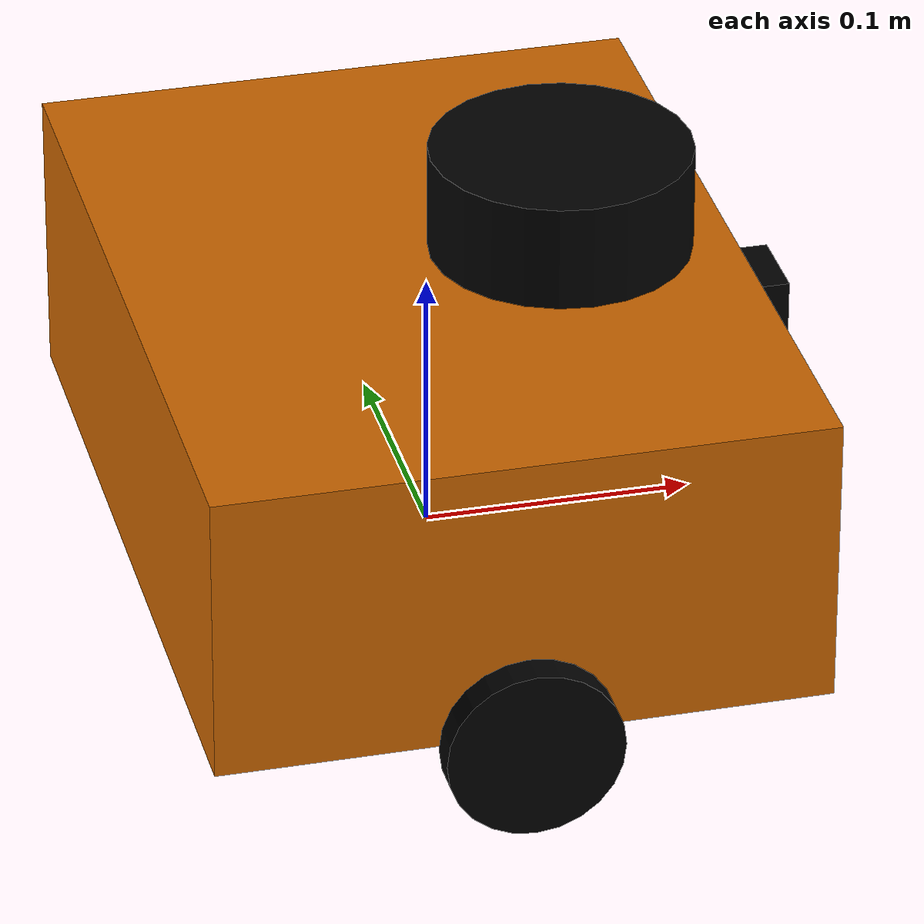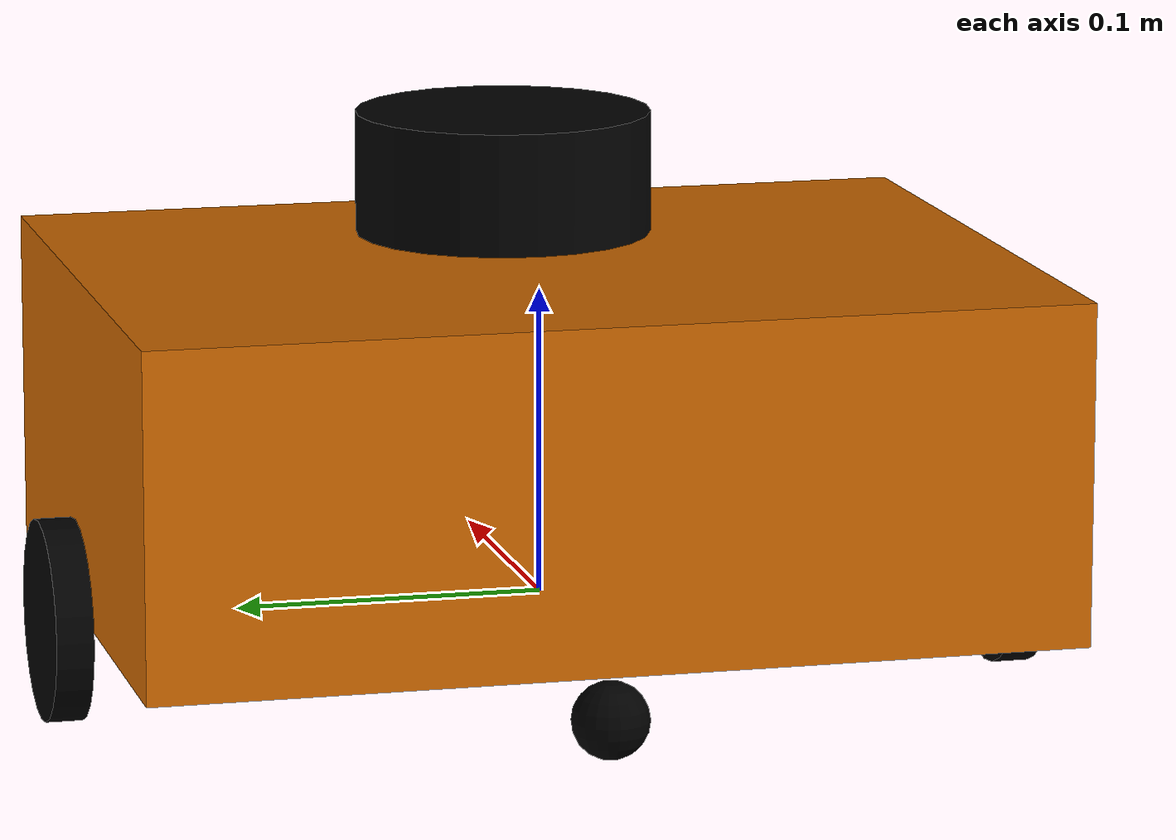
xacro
<?xml version="1.0"?>
<robot xmlns:xacro="http://www.ros.org/wiki/xacro" name="diff_bot">
  <!-- Include other XACRO files -->
  <xacro:include filename="properties.xacro"/>
  <xacro:include filename="inertial_macros.xacro"/>
  <xacro:include filename="chassis.xacro"/>
  <xacro:include filename="wheels.xacro"/>
  <xacro:include filename="caster_wheel.xacro"/>
  <xacro:include filename="lidar.xacro"/>
  <xacro:include filename="camera.xacro"/>
  <xacro:include filename="gazebo_control.xacro"/>
  <xacro:include filename="control.xacro"/>

  <!-- Base link - the root of the robot -->
  <link name="base_link"/>
</robot>

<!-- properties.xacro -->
<robot xmlns:xacro="http://www.ros.org/wiki/xacro">

  <!-- ################### Chassis ################### -->
  <xacro:property name="chassis_length" value="0.225"/> <!-- Updated from previous box dimensions -->
  <xacro:property name="chassis_width" value="0.3"/> <!-- Updated from previous box dimensions -->
  <xacro:property name="chassis_height" value="0.11"/> <!-- Retained as it matches the original -->
  <xacro:property name="chassis_mass" value="3.0"/> <!-- Mass remains unchanged -->

  <!-- ################### Wheels ################### -->
  <xacro:property name="wheel_offset_x" value="0"/> <!-- No forward/backward offset specified -->
  <xacro:property name="wheel_offset_y" value="0.158"/> <!-- Updated from wheel joint positions -->
  <xacro:property name="wheel_offset_z" value="0"/> <!-- Aligned with base_link -->
  <xacro:property name="wheel_thickness" value="0.012"/> <!-- Matches cylinder length for wheels -->
  <xacro:property name="wheel_radius" value="0.0325"/> <!-- Matches cylinder radius for wheels -->
  <xacro:property name="wheel_mass" value="0.037"/> <!-- Mass remains unchanged -->

  <!-- ################### Caster Wheel ################### -->
  <xacro:property name="caster_wheel_radius" value="0.0125"/> <!-- Updated to match sphere radius -->
  <xacro:property name="caster_wheel_mass" value="0.01"/> <!-- Mass remains unchanged -->
  <xacro:property name="caster_wheel_offset_x" value="0.0925"/> <!-- Matches caster joint offset -->
  <xacro:property name="caster_wheel_offset_z" value="-0.019"/> <!-- Matches caster joint offset -->

  <!-- ################### LIDAR ################### -->
  <xacro:property name="lidar_radius" value="0.0485"/> <!-- Diameter=97mm -->
  <xacro:property name="lidar_height" value="0.06"/> <!-- Height=60mm -->
  <xacro:property name="lidar_offset_x" value="0.05"/> <!-- X offset from base -->
  <xacro:property name="lidar_offset_y" value="0.0"/> <!-- Y offset from base -->
  <xacro:property name="lidar_offset_z" value="0.12"/> <!-- Z offset from base -->

    <!-- ################### Camera ################### -->
  <xacro:property name="camera_width" value="0.03"/> <!-- Camera width -->
  <xacro:property name="camera_height" value="0.02"/> <!-- Camera height -->
  <xacro:property name="camera_depth" value="0.03"/> <!-- Camera depth -->
  <xacro:property name="camera_offset_x" value="0.118"/> <!-- X offset from base -->
  <xacro:property name="camera_offset_y" value="0.0"/> <!-- Y offset from base -->
  <xacro:property name="camera_offset_z" value="0.08"/> <!-- Z offset from base -->

                                <!-- Colors -->
    <material name="white">
        <color rgba="1 1 1 1"/>
    </material>

    <material name="red">
        <color rgba="1 0 0 1"/>
    </material>

    <material name="green">
        <color rgba="0 1 0 1"/>
    </material>

    <material name="blue">
        <color rgba="0 0 1 1"/>
    </material>

    <material name="black">
        <color rgba="0 0 0 1"/>
    </material>

    <material name="orange">
        <color rgba="0.8 0.4 0.0 1.0"/> <!-- Orange -->
    </material>
</robot>

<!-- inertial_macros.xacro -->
<robot xmlns:xacro="http://www.ros.org/wiki/xacro" >
<!-- Specify some standard inertial calculations https://en.wikipedia.org/wiki/List_of_moments_of_inertia -->
<!-- These make use of xacro's mathematical functionality -->
<xacro:macro name="inertial_sphere" params="mass radius *origin">
  <inertial>
    <xacro:insert_block name="origin"/>
    <mass value="${mass}" />
    <inertia ixx="${(2/5) * mass * (radius*radius)}" ixy="0.0" ixz="0.0"
             iyy="${(2/5) * mass * (radius*radius)}" iyz="0.0"
             izz="${(2/5) * mass * (radius*radius)}" />
  </inertial>
</xacro:macro>

<xacro:macro name="inertial_box" params="mass x y z *origin">
  <inertial>
    <xacro:insert_block name="origin"/>
    <mass value="${mass}" />
    <inertia ixx="${(1/12) * mass * (y*y+z*z)}" ixy="0.0" ixz="0.0"
             iyy="${(1/12) * mass * (x*x+z*z)}" iyz="0.0"
             izz="${(1/12) * mass * (x*x+y*y)}" />
  </inertial>
</xacro:macro>

<xacro:macro name="inertial_cylinder" params="mass length radius *origin">
  <inertial>
    <xacro:insert_block name="origin"/>
    <mass value="${mass}" />
    <inertia ixx="${(1/12) * mass * (3*radius*radius + length*length)}" ixy="0.0" ixz="0.0"
             iyy="${(1/12) * mass * (3*radius*radius + length*length)}" iyz="0.0"
             izz="${(1/2) * mass * (radius*radius)}" />
  </inertial>
</xacro:macro>
</robot>

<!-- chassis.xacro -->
<robot xmlns:xacro="http://www.ros.org/wiki/xacro">
<!-- Define materials -->

<!-- ################### BASE CHASSIS ################### -->
<link name="chassis_link">
  <visual>
    <geometry>
      <box size="0.225 0.3 0.11"/> <!-- L=22.5cm, W=30cm, H=11cm -->
    </geometry>
    <origin xyz="0.0 0.0 0.055" rpy="0.0 0.0 0.0"/>
    <material name="orange"/>
  </visual>
  <collision>
    <geometry>
      <box size="0.225 0.3 0.11"/> <!-- L=22.5cm, W=30cm, H=11cm -->
    </geometry>
    <origin xyz="0.0 0.0 0.055" rpy="0.0 0.0 0.0"/>
  </collision>
  <xacro:inertial_box mass="3" x="0.225" y="0.3" z="0.11">
    <origin xyz="0.0 0.0 0.055" rpy="0.0 0.0 0.0"/>
  </xacro:inertial_box>
</link>

<joint name="chassis_joint" type="fixed">
  <parent link="base_link"/>
  <child link="chassis_link"/>
  <origin xyz="0.0 0.0 0.0" rpy="0.0 0.0 0.0"/>
</joint>
<gazebo reference="chassis_link">
    <material> Gazebo/Orange </material>
</gazebo>

</robot>

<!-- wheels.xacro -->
<robot xmlns:xacro="http://www.ros.org/wiki/xacro">
<!-- ################### LEFT WHEEL ################### -->
<link name="wheel_left">
  <visual>
    <geometry>
      <cylinder radius="${wheel_radius}" length="${wheel_thickness}"/>
    </geometry>
    <material name="black"/>
  </visual>
  <collision>
    <geometry>
      <cylinder radius="${wheel_radius}" length="${wheel_thickness}"/>
    </geometry>
  </collision>
  <xacro:inertial_cylinder mass="${wheel_mass}" length="${wheel_thickness}" radius="${wheel_radius}">
    <origin xyz="0 0 0" rpy="0 0 0"/>
  </xacro:inertial_cylinder>
</link>

<joint name="wheel_left_joint" type="continuous">
  <parent link="base_link"/>
  <child link="wheel_left"/>
  <origin xyz="${wheel_offset_x} ${wheel_offset_y} ${wheel_offset_z}" rpy="${-pi/2} 0 0"/>
  <axis xyz="0 0 1"/>
  <dynamics damping="0.1" friction="0.1"/>
</joint>

<gazebo reference="wheel_left">
  <material>Gazebo/Black</material>
  <mu1>1.0</mu1>
  <mu2>1.0</mu2>
  <kp>1000000.0</kp>
  <kd>100.0</kd>
  <minDepth>0.001</minDepth>
  <maxVel>1.0</maxVel>
</gazebo>

<!-- ################### RIGHT WHEEL ################### -->
<link name="wheel_right">
  <visual>
    <geometry>
      <cylinder radius="${wheel_radius}" length="${wheel_thickness}"/>
    </geometry>
    <material name="black"/>
  </visual>
  <collision>
    <geometry>
      <cylinder radius="${wheel_radius}" length="${wheel_thickness}"/>
    </geometry>
  </collision>
  <xacro:inertial_cylinder mass="${wheel_mass}" length="${wheel_thickness}" radius="${wheel_radius}">
    <origin xyz="0 0 0" rpy="0 0 0"/>
  </xacro:inertial_cylinder>
</link>

<joint name="wheel_right_joint" type="continuous">
  <parent link="base_link"/>
  <child link="wheel_right"/>
  <origin xyz="${wheel_offset_x} -${wheel_offset_y} ${wheel_offset_z}" rpy="${-pi/2} 0 0"/>
  <axis xyz="0 0 1"/>
  <dynamics damping="0.1" friction="0.1"/>
</joint>

<gazebo reference="wheel_right">
  <material>Gazebo/Black</material>
  <mu1>1.0</mu1>
  <mu2>1.0</mu2>
  <kp>1000000.0</kp>
  <kd>100.0</kd>
  <minDepth>0.001</minDepth>
  <maxVel>1.0</maxVel>
</gazebo>
</robot>

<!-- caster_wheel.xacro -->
<robot xmlns:xacro="http://www.ros.org/wiki/xacro">
<!-- ################### LEFT CASTER ################### -->
<link name="caster_left">
  <visual>
    <geometry>
      <sphere radius="${caster_wheel_radius}"/>
    </geometry>
    <material name="black"/>
  </visual>
  <collision>
    <geometry>
      <sphere radius="${caster_wheel_radius}"/>
    </geometry>
  </collision>
  <xacro:inertial_sphere mass="${caster_wheel_mass}" radius="${caster_wheel_radius}">
    <origin xyz="0 0 0" rpy="0 0 0"/>
  </xacro:inertial_sphere>
</link>

<joint name="caster_left_joint" type="fixed">
  <parent link="base_link"/>
  <child link="caster_left"/>
  <origin xyz="-${caster_wheel_offset_x} 0 ${caster_wheel_offset_z}"/>
</joint>

<gazebo reference="caster_left">
  <material>Gazebo/Black</material>
  <mu1>0.01</mu1>
  <mu2>0.01</mu2>
</gazebo>

<!-- ################### RIGHT CASTER ################### -->
<link name="caster_right">
  <visual>
    <geometry>
      <sphere radius="${caster_wheel_radius}"/>
    </geometry>
    <material name="black"/>
  </visual>
  <collision>
    <geometry>
      <sphere radius="${caster_wheel_radius}"/>
    </geometry>
  </collision>
  <xacro:inertial_sphere mass="${caster_wheel_mass}" radius="${caster_wheel_radius}">
    <origin xyz="0 0 0" rpy="0 0 0"/>
  </xacro:inertial_sphere>
</link>

<joint name="caster_right_joint" type="fixed">
  <parent link="base_link"/>
  <child link="caster_right"/>
  <origin xyz="${caster_wheel_offset_x} 0 ${caster_wheel_offset_z}"/>
</joint>

<gazebo reference="caster_right">
  <material>Gazebo/Black</material>
  <mu1>0.01</mu1>
  <mu2>0.01</mu2>
</gazebo>
</robot>

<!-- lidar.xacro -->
<robot xmlns:xacro="http://www.ros.org/wiki/xacro">

  <link name="lidar_link">
    <visual>
      <geometry>
        <cylinder radius="${lidar_radius}" length="${lidar_height}"/> <!-- Using properties for dimensions -->
      </geometry>
      <origin xyz="0 0 0" rpy="0 0 0"/>
      <material name="black"/>
    </visual>
  </link>
  <joint name="lidar_joint" type="fixed">
    <parent link="base_link"/>
    <child link="lidar_link"/>
    <origin xyz="${lidar_offset_x} ${lidar_offset_y} ${lidar_offset_z}" rpy="0 0 0"/> <!-- Using properties for position -->
  </joint>

<gazebo reference="lidar_link">
    <material> Gazebo/Black </material>
</gazebo>

</robot>

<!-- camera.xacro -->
<robot xmlns:xacro="http://www.ros.org/wiki/xacro">

  <link name="camera_link">
    <visual>
      <geometry>
        <box size="${camera_depth} ${camera_width} ${camera_height}"/>
      </geometry>
      <material name="black"/>
    </visual>
  </link>

  <joint name="camera_joint" type="fixed">
    <parent link="base_link"/>
    <child link="camera_link"/>
    <origin xyz="${camera_offset_x} ${camera_offset_y} ${camera_offset_z}" rpy="0 0 0"/>
  </joint>

  <gazebo reference="camera_link">
    <material> Gazebo/Black </material>
</gazebo>

</robot>
